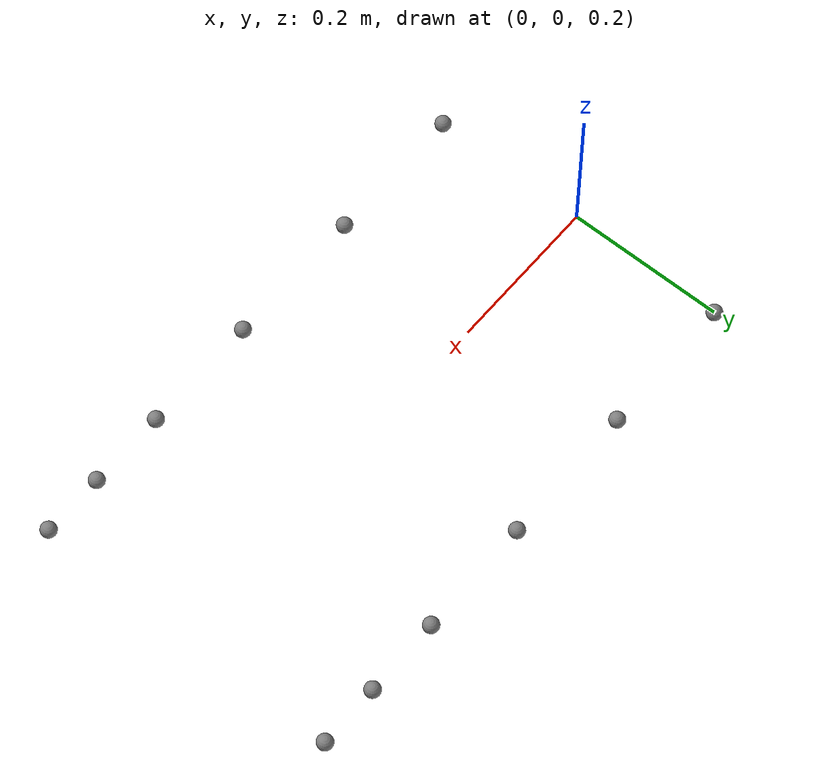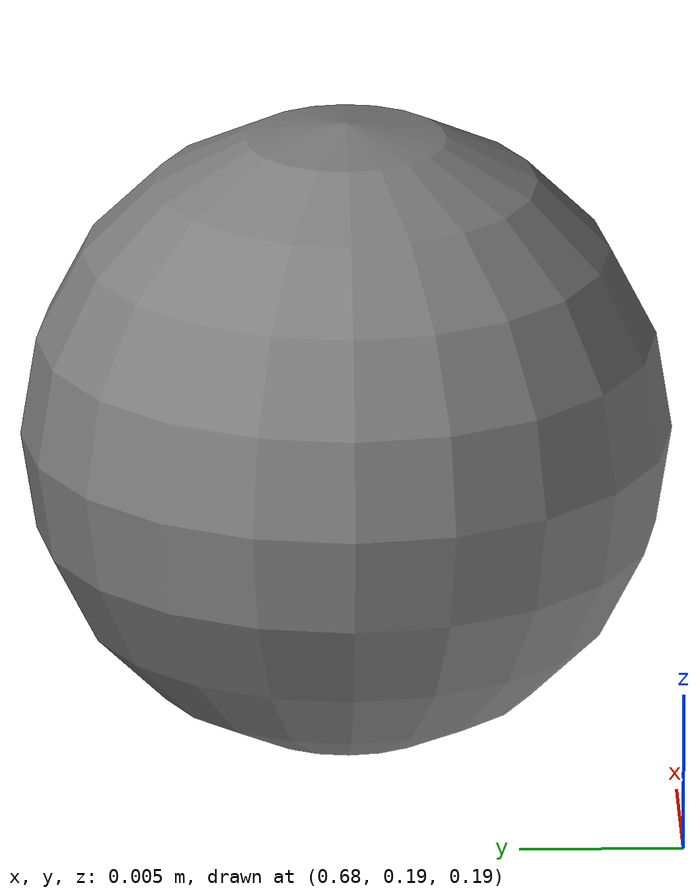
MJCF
<mujoco model="tiny_yam_kinematics_only">
  <compiler angle="radian"/>
  <worldbody>
    <body name="bimanual_base">
      <body name="left_link_1" pos="0 0.2 0.2">
        <joint name="left_joint1" type="hinge" axis="0 0 1" range="-3 3"/>
        <geom type="sphere" size="0.01" mass="0.1"/>
        <body name="left_link_2" pos="0.18 0 0">
          <joint name="left_joint2" type="hinge" axis="0 1 0" range="-3 3"/>
          <geom type="sphere" size="0.01" mass="0.1"/>
          <body name="left_link_3" pos="0.18 0 0">
            <joint name="left_joint3" type="hinge" axis="0 1 0" range="-3 3"/>
            <geom type="sphere" size="0.01" mass="0.1"/>
            <body name="left_link_4" pos="0.15 0 0">
              <joint name="left_joint4" type="hinge" axis="1 0 0" range="-3 3"/>
              <geom type="sphere" size="0.01" mass="0.1"/>
              <body name="left_link_5" pos="0.10 0 0">
                <joint name="left_joint5" type="hinge" axis="0 1 0" range="-3 3"/>
                <geom type="sphere" size="0.01" mass="0.1"/>
                <body name="left_link_6" pos="0.08 0 0">
                  <joint name="left_joint6" type="hinge" axis="0 0 1" range="-3 3"/>
                  <geom type="sphere" size="0.01" mass="0.1"/>
                  <body name="left_finger_body"><joint name="left_left_finger" type="hinge" axis="0 1 0" range="-0.0475 0"/><geom type="sphere" size="0.005" mass="0.01"/></body>
                  <body name="left_other_finger_body"><joint name="left_right_finger" type="hinge" axis="0 1 0" range="-0.0475 0"/><geom type="sphere" size="0.005" mass="0.01"/></body>
                </body>
              </body>
            </body>
          </body>
        </body>
      </body>
      <body name="right_link_1" pos="0 -0.2 0.2">
        <joint name="right_joint1" type="hinge" axis="0 0 1" range="-3 3"/>
        <geom type="sphere" size="0.01" mass="0.1"/>
        <body name="right_link_2" pos="0.18 0 0">
          <joint name="right_joint2" type="hinge" axis="0 1 0" range="-3 3"/>
          <geom type="sphere" size="0.01" mass="0.1"/>
          <body name="right_link_3" pos="0.18 0 0">
            <joint name="right_joint3" type="hinge" axis="0 1 0" range="-3 3"/>
            <geom type="sphere" size="0.01" mass="0.1"/>
            <body name="right_link_4" pos="0.15 0 0">
              <joint name="right_joint4" type="hinge" axis="1 0 0" range="-3 3"/>
              <geom type="sphere" size="0.01" mass="0.1"/>
              <body name="right_link_5" pos="0.10 0 0">
                <joint name="right_joint5" type="hinge" axis="0 1 0" range="-3 3"/>
                <geom type="sphere" size="0.01" mass="0.1"/>
                <body name="right_link_6" pos="0.08 0 0">
                  <joint name="right_joint6" type="hinge" axis="0 0 1" range="-3 3"/>
                  <geom type="sphere" size="0.01" mass="0.1"/>
                  <body name="right_finger_body"><joint name="right_left_finger" type="hinge" axis="0 1 0" range="-0.0475 0"/><geom type="sphere" size="0.005" mass="0.01"/></body>
                  <body name="right_other_finger_body"><joint name="right_right_finger" type="hinge" axis="0 1 0" range="-0.0475 0"/><geom type="sphere" size="0.005" mass="0.01"/></body>
                </body>
              </body>
            </body>
          </body>
        </body>
      </body>
    </body>
  </worldbody>
</mujoco>
